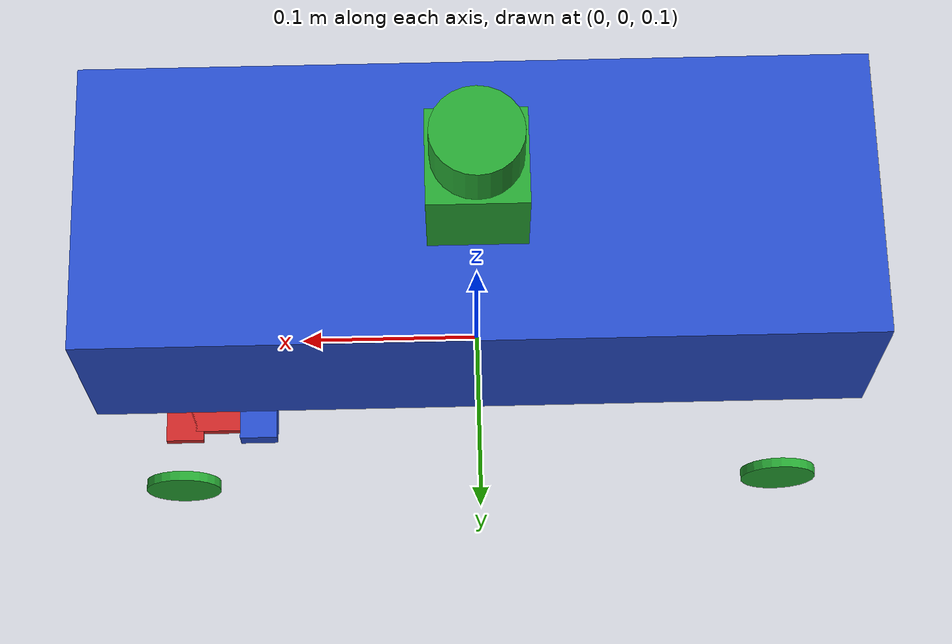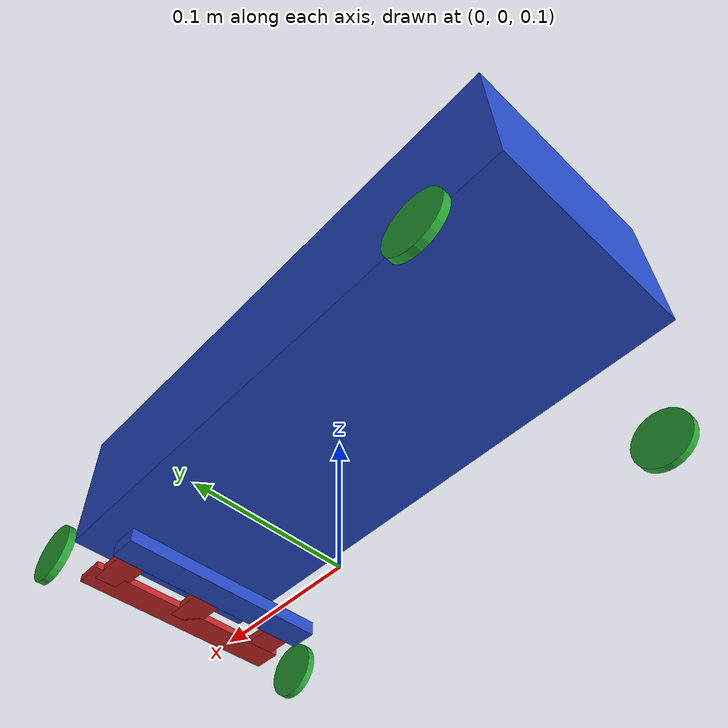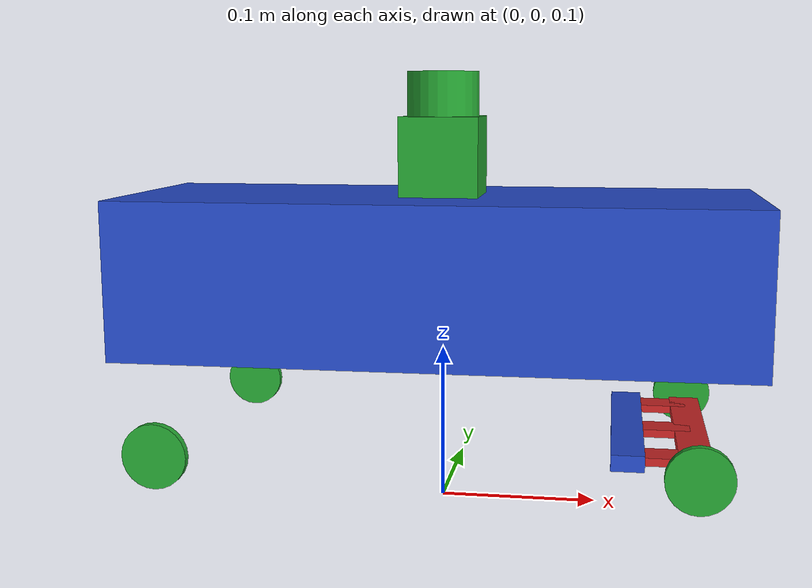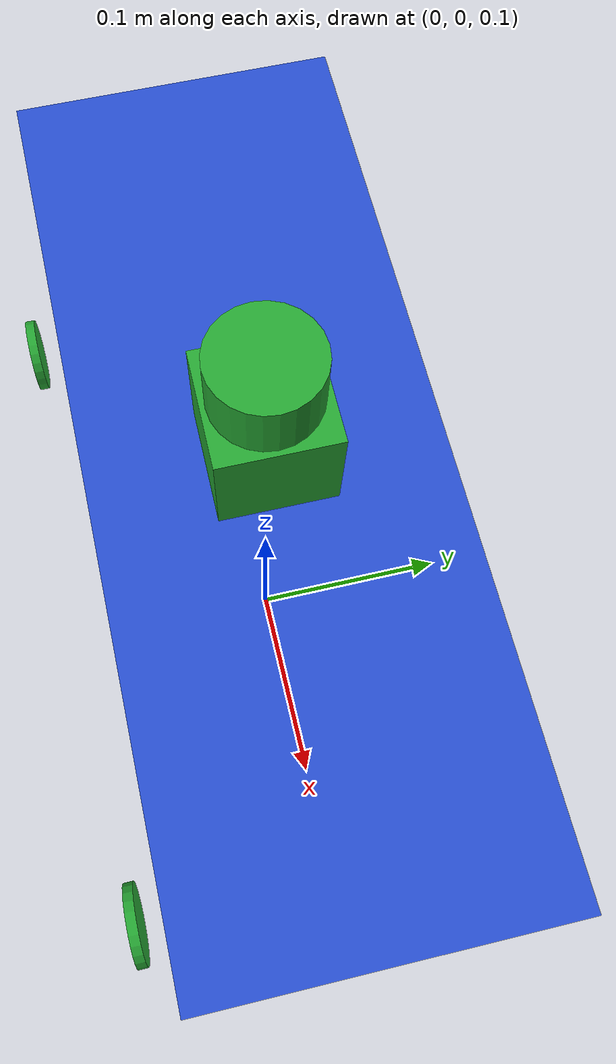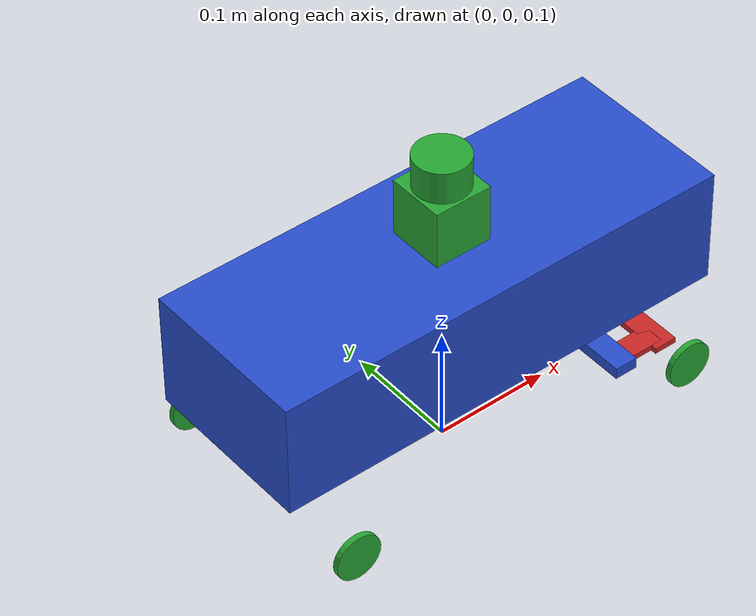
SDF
<sdf version='1.3'>
  <model name='ackermann'>
    <link name='base_link'>
      <pose>0.000000 0.000000 0.000000 0.000000 0.000000 0.000000</pose>
      <inertial>
        <pose>0.002623 0.000000 0.022951 0.000000 0.000000 0.000000</pose>
        <mass>0.610000</mass>
        <inertia>
          <ixx>0.611350</ixx>
          <ixy>0.000000</ixy>
          <ixz>0.000160</ixz>
          <iyy>0.611606</iyy>
          <iyz>0.000000</iyz>
          <izz>0.610256</izz>
        </inertia>
      </inertial>
      <collision name='base_link_geom'>
        <pose>0.000000 0.000000 0.000000 0.000000 0.000000 0.000000</pose>
        <geometry>
          <box>
            <size>0.400000 0.150000 0.100000</size>
          </box>
        </geometry>
        <surface>
          <contact>
            <ode/>
          </contact>
          <friction>
            <ode/>
          </friction>
        </surface>
      </collision>
      <collision name='base_link_geom_base_scan_link'>
        <pose>0.000000 0.000000 0.114000 0.000000 0.000000 0.000000</pose>
        <geometry>
          <cylinder>
            <length>0.028000</length>
            <radius>0.022900</radius>
          </cylinder>
        </geometry>
        <surface>
          <contact>
            <ode/>
          </contact>
          <friction>
            <ode/>
          </friction>
        </surface>
        <surface>
          <contact>
            <ode/>
          </contact>
          <friction>
            <ode/>
          </friction>
        </surface>
      </collision>
      <collision name='base_link_geom_front_link'>
        <pose>0.160000 0.000000 -0.100000 0.000000 0.000000 0.000000</pose>
        <geometry>
          <box>
            <size>0.020000 0.150000 0.005000</size>
          </box>
        </geometry>
        <surface>
          <contact>
            <ode/>
          </contact>
          <friction>
            <ode/>
          </friction>
        </surface>
        <surface>
          <contact>
            <ode/>
          </contact>
          <friction>
            <ode/>
          </friction>
        </surface>
      </collision>
      <collision name='base_link_geom_laser_base_link'>
        <pose>0.000000 0.000000 0.075000 0.000000 0.000000 0.000000</pose>
        <geometry>
          <box>
            <size>0.050000 0.050000 0.050000</size>
          </box>
        </geometry>
        <surface>
          <contact>
            <ode/>
          </contact>
          <friction>
            <ode/>
          </friction>
        </surface>
      </collision>
      <visual name='base_link_visual'>
        <pose>0.000000 0.000000 0.000000 0.000000 0.000000 0.000000</pose>
        <geometry>
          <box>
            <size>0.400000 0.150000 0.100000</size>
          </box>
        </geometry>
        <material>
          <script>
            <name>Gazebo/Blue</name>
          </script>
        </material>
      </visual>
      <visual name='base_link_visualbase_scan_link'>
        <pose>0.000000 0.000000 0.114000 0.000000 0.000000 0.000000</pose>
        <geometry>
          <cylinder>
            <length>0.028000</length>
            <radius>0.022900</radius>
          </cylinder>
        </geometry>
        <material>
          <script>
            <name>Gazebo/Green</name>
          </script>
        </material>
      </visual>
      <visual name='base_link_visualfront_link'>
        <pose>0.160000 0.000000 -0.100000 0.000000 0.000000 0.000000</pose>
        <geometry>
          <box>
            <size>0.020000 0.150000 0.005000</size>
          </box>
        </geometry>
        <material>
          <script>
            <name>Gazebo/Red</name>
          </script>
        </material>
        <material>
          <script>
            <name>Gazebo/Red</name>
          </script>
        </material>
      </visual>
      <visual name='base_link_visuallaser_base_link'>
        <pose>0.000000 0.000000 0.075000 0.000000 0.000000 0.000000</pose>
        <geometry>
          <box>
            <size>0.050000 0.050000 0.050000</size>
          </box>
        </geometry>
        <material>
          <script>
            <name>Gazebo/Green</name>
          </script>
        </material>
      </visual>
      <velocity_decay>
        <linear>0.000000</linear>
        <angular>0.000000</angular>
      </velocity_decay>
      <velocity_decay>
        <linear>0.000000</linear>
        <angular>0.000000</angular>
      </velocity_decay>
      <velocity_decay>
        <linear>0.000000</linear>
        <angular>0.000000</angular>
      </velocity_decay>
      <velocity_decay>
        <linear>0.000000</linear>
        <angular>0.000000</angular>
      </velocity_decay>
      <velocity_decay>
        <linear>0.000000</linear>
        <angular>0.000000</angular>
      </velocity_decay>
      <sensor name='laser' type='ray'>
        <update_rate>10.000000</update_rate>
        <ray>
          <scan>
            <horizontal>
              <samples>683</samples>
              <resolution>1.000000</resolution>
              <min_angle>-2.356194</min_angle>
              <max_angle>2.356194</max_angle>
            </horizontal>
            <vertical>
              <samples>1</samples>
              <min_angle>0.000000</min_angle>
              <max_angle>0.000000</max_angle>
            </vertical>
          </scan>
          <range>
            <min>0.060000</min>
            <max>4.000000</max>
            <resolution>0.001000</resolution>
          </range>
        </ray>

        <pose>0.000000 0.000000 0.100000 0.000000 0.000000 0.000000</pose>
      </sensor>
      <gravity>1</gravity>
      <velocity_decay>
        <linear>0.000000</linear>
        <angular>0.000000</angular>
      </velocity_decay>
      <self_collide>0</self_collide>
    </link>
    <link name='back_left_wheel_link'>
      <pose>-0.160000 0.100000 -0.100000 0.000000 0.000000 0.000000</pose>
      <inertial>
        <pose>0.000000 0.000000 0.000000 0.000000 0.000000 0.000000</pose>
        <mass>0.010000</mass>
        <inertia>
          <ixx>0.010000</ixx>
          <ixy>0.000000</ixy>
          <ixz>0.000000</ixz>
          <iyy>0.010000</iyy>
          <iyz>0.000000</iyz>
          <izz>0.010000</izz>
        </inertia>
      </inertial>
      <collision name='back_left_wheel_link_geom'>
        <pose>0.000000 0.000000 0.000000 1.570800 0.000000 0.000000</pose>
        <geometry>
          <cylinder>
            <length>0.005000</length>
            <radius>0.020000</radius>
          </cylinder>
        </geometry>
        <surface>
          <contact>
            <ode/>
          </contact>
          <friction>
            <ode/>
          </friction>
        </surface>
      </collision>
      <visual name='back_left_wheel_link_visual'>
        <pose>0.000000 0.000000 0.000000 1.570800 0.000000 0.000000</pose>
        <geometry>
          <cylinder>
            <length>0.005000</length>
            <radius>0.020000</radius>
          </cylinder>
        </geometry>
        <material>
          <script>
            <name>Gazebo/Green</name>
          </script>
        </material>
      </visual>
      <gravity>1</gravity>
      <velocity_decay>
        <linear>0.000000</linear>
        <angular>0.000000</angular>
      </velocity_decay>
      <self_collide>0</self_collide>
    </link>
    <joint name='back_left_wheel_joint' type='revolute'>
      <child>back_left_wheel_link</child>
      <parent>base_link</parent>
      <axis>
        <xyz>0.000000 1.000000 0.000000</xyz>
        <limit>
          <lower>-10000000000000000.000000</lower>
          <upper>10000000000000000.000000</upper>
        </limit>
        <dynamics/>
      </axis>
    </joint>
    <link name='back_right_wheel_link'>
      <pose>-0.160000 -0.100000 -0.100000 0.000000 0.000000 0.000000</pose>
      <inertial>
        <pose>0.000000 0.000000 0.000000 0.000000 0.000000 0.000000</pose>
        <mass>0.010000</mass>
        <inertia>
          <ixx>0.010000</ixx>
          <ixy>0.000000</ixy>
          <ixz>0.000000</ixz>
          <iyy>0.010000</iyy>
          <iyz>0.000000</iyz>
          <izz>0.010000</izz>
        </inertia>
      </inertial>
      <collision name='back_right_wheel_link_geom'>
        <pose>0.000000 0.000000 0.000000 1.570800 0.000000 0.000000</pose>
        <geometry>
          <cylinder>
            <length>0.005000</length>
            <radius>0.020000</radius>
          </cylinder>
        </geometry>
        <surface>
          <contact>
            <ode/>
          </contact>
          <friction>
            <ode/>
          </friction>
        </surface>
      </collision>
      <visual name='back_right_wheel_link_visual'>
        <pose>0.000000 0.000000 0.000000 1.570800 0.000000 0.000000</pose>
        <geometry>
          <cylinder>
            <length>0.005000</length>
            <radius>0.020000</radius>
          </cylinder>
        </geometry>
        <material>
          <script>
            <name>Gazebo/Green</name>
          </script>
        </material>
      </visual>
      <gravity>1</gravity>
      <velocity_decay>
        <linear>0.000000</linear>
        <angular>0.000000</angular>
      </velocity_decay>
      <self_collide>0</self_collide>
    </link>
    <joint name='back_right_wheel_joint' type='revolute'>
      <child>back_right_wheel_link</child>
      <parent>base_link</parent>
      <axis>
        <xyz>0.000000 1.000000 0.000000</xyz>
        <limit>
          <lower>-10000000000000000.000000</lower>
          <upper>10000000000000000.000000</upper>
        </limit>
        <dynamics/>
      </axis>
    </joint>
    <link name='front_left_bar_link'>
      <pose>0.160000 0.060000 -0.100000 0.000000 0.000000 0.000000</pose>
      <inertial>
        <pose>0.000000 0.000000 0.000000 0.000000 0.000000 0.000000</pose>
        <mass>0.010000</mass>
        <inertia>
          <ixx>0.010000</ixx>
          <ixy>0.000000</ixy>
          <ixz>0.000000</ixz>
          <iyy>0.010000</iyy>
          <iyz>0.000000</iyz>
          <izz>0.010000</izz>
        </inertia>
      </inertial>
      <collision name='front_left_bar_link_geom'>
        <pose>-0.020000 0.000000 0.000000 0.000000 0.000000 0.000000</pose>
        <geometry>
          <box>
            <size>0.040000 0.020000 0.005000</size>
          </box>
        </geometry>
        <surface>
          <contact>
            <ode/>
          </contact>
          <friction>
            <ode/>
          </friction>
        </surface>
      </collision>
      <visual name='front_left_bar_link_visual'>
        <pose>-0.020000 0.000000 0.000000 0.000000 0.000000 0.000000</pose>
        <geometry>
          <box>
            <size>0.040000 0.020000 0.005000</size>
          </box>
        </geometry>
        <material>
          <script>
            <name>Gazebo/Red</name>
          </script>
        </material>
      </visual>
      <gravity>1</gravity>
      <velocity_decay>
        <linear>0.000000</linear>
        <angular>0.000000</angular>
      </velocity_decay>
      <self_collide>0</self_collide>
    </link>
    <joint name='front_left_bar_joint' type='revolute'>
      <child>front_left_bar_link</child>
      <parent>base_link</parent>
      <axis>
        <xyz>0.000000 0.000000 1.000000</xyz>
        <limit>
          <lower>-0.500000</lower>
          <upper>0.500000</upper>
        </limit>
        <dynamics/>
      </axis>
    </joint>
    <link name='front_left_wheel_link'>
      <pose>0.160000 0.100000 -0.100000 0.000000 0.000000 0.000000</pose>
      <inertial>
        <pose>0.000000 0.000000 0.000000 0.000000 0.000000 0.000000</pose>
        <mass>0.010000</mass>
        <inertia>
          <ixx>0.010000</ixx>
          <ixy>0.000000</ixy>
          <ixz>0.000000</ixz>
          <iyy>0.010000</iyy>
          <iyz>0.000000</iyz>
          <izz>0.010000</izz>
        </inertia>
      </inertial>
      <collision name='front_left_wheel_link_geom'>
        <pose>0.000000 0.000000 0.000000 1.570800 0.000000 0.000000</pose>
        <geometry>
          <cylinder>
            <length>0.005000</length>
            <radius>0.020000</radius>
          </cylinder>
        </geometry>
        <surface>
          <contact>
            <ode/>
          </contact>
          <friction>
            <ode/>
          </friction>
        </surface>
      </collision>
      <visual name='front_left_wheel_link_visual'>
        <pose>0.000000 0.000000 0.000000 1.570800 0.000000 0.000000</pose>
        <geometry>
          <cylinder>
            <length>0.005000</length>
            <radius>0.020000</radius>
          </cylinder>
        </geometry>
        <material>
          <script>
            <name>Gazebo/Green</name>
          </script>
        </material>
      </visual>
      <gravity>1</gravity>
      <velocity_decay>
        <linear>0.000000</linear>
        <angular>0.000000</angular>
      </velocity_decay>
      <self_collide>0</self_collide>
    </link>
    <joint name='front_left_wheel_joint' type='revolute'>
      <child>front_left_wheel_link</child>
      <parent>front_left_bar_link</parent>
      <axis>
        <xyz>0.000000 1.000000 0.000000</xyz>
        <limit>
          <lower>-10000000000000000.000000</lower>
          <upper>10000000000000000.000000</upper>
        </limit>
        <dynamics/>
      </axis>
    </joint>
    <link name='front_right_bar_link'>
      <pose>0.160000 -0.060000 -0.100000 0.000000 0.000000 0.000000</pose>
      <inertial>
        <pose>0.000000 0.000000 0.000000 0.000000 0.000000 0.000000</pose>
        <mass>0.010000</mass>
        <inertia>
          <ixx>0.010000</ixx>
          <ixy>0.000000</ixy>
          <ixz>0.000000</ixz>
          <iyy>0.010000</iyy>
          <iyz>0.000000</iyz>
          <izz>0.010000</izz>
        </inertia>
      </inertial>
      <collision name='front_right_bar_link_geom'>
        <pose>-0.020000 0.000000 0.000000 0.000000 0.000000 0.000000</pose>
        <geometry>
          <box>
            <size>0.040000 0.020000 0.005000</size>
          </box>
        </geometry>
        <surface>
          <contact>
            <ode/>
          </contact>
          <friction>
            <ode/>
          </friction>
        </surface>
      </collision>
      <visual name='front_right_bar_link_visual'>
        <pose>-0.020000 0.000000 0.000000 0.000000 0.000000 0.000000</pose>
        <geometry>
          <box>
            <size>0.040000 0.020000 0.005000</size>
          </box>
        </geometry>
        <material>
          <script>
            <name>Gazebo/Red</name>
          </script>
        </material>
      </visual>
      <gravity>1</gravity>
      <velocity_decay>
        <linear>0.000000</linear>
        <angular>0.000000</angular>
      </velocity_decay>
      <self_collide>0</self_collide>
    </link>
    <joint name='front_right_bar_joint' type='revolute'>
      <child>front_right_bar_link</child>
      <parent>base_link</parent>
      <axis>
        <xyz>0.000000 0.000000 1.000000</xyz>
        <limit>
          <lower>-0.500000</lower>
          <upper>0.500000</upper>
        </limit>
        <dynamics/>
      </axis>
    </joint>
    <link name='front_right_wheel_link'>
      <pose>0.160000 -0.100000 -0.100000 0.000000 0.000000 0.000000</pose>
      <inertial>
        <pose>0.000000 0.000000 0.000000 0.000000 0.000000 0.000000</pose>
        <mass>0.010000</mass>
        <inertia>
          <ixx>0.010000</ixx>
          <ixy>0.000000</ixy>
          <ixz>0.000000</ixz>
          <iyy>0.010000</iyy>
          <iyz>0.000000</iyz>
          <izz>0.010000</izz>
        </inertia>
      </inertial>
      <collision name='front_right_wheel_link_geom'>
        <pose>0.000000 0.000000 0.000000 1.570800 0.000000 0.000000</pose>
        <geometry>
          <cylinder>
            <length>0.005000</length>
            <radius>0.020000</radius>
          </cylinder>
        </geometry>
        <surface>
          <contact>
            <ode/>
          </contact>
          <friction>
            <ode/>
          </friction>
        </surface>
      </collision>
      <visual name='front_right_wheel_link_visual'>
        <pose>0.000000 0.000000 0.000000 1.570800 0.000000 0.000000</pose>
        <geometry>
          <cylinder>
            <length>0.005000</length>
            <radius>0.020000</radius>
          </cylinder>
        </geometry>
        <material>
          <script>
            <name>Gazebo/Green</name>
          </script>
        </material>
      </visual>
      <gravity>1</gravity>
      <velocity_decay>
        <linear>0.000000</linear>
        <angular>0.000000</angular>
      </velocity_decay>
      <self_collide>0</self_collide>
    </link>
    <joint name='front_right_wheel_joint' type='revolute'>
      <child>front_right_wheel_link</child>
      <parent>front_right_bar_link</parent>
      <axis>
        <xyz>0.000000 1.000000 0.000000</xyz>
        <limit>
          <lower>-10000000000000000.000000</lower>
          <upper>10000000000000000.000000</upper>
        </limit>
        <dynamics/>
      </axis>
    </joint>
    <link name='steer_link'>
      <pose>0.160000 0.000000 -0.100000 0.000000 0.000000 0.000000</pose>
      <inertial>
        <pose>0.000000 0.000000 0.000000 0.000000 0.000000 0.000000</pose>
        <mass>0.010000</mass>
        <inertia>
          <ixx>0.010000</ixx>
          <ixy>0.000000</ixy>
          <ixz>0.000000</ixz>
          <iyy>0.010000</iyy>
          <iyz>0.000000</iyz>
          <izz>0.010000</izz>
        </inertia>
      </inertial>
      <collision name='steer_link_geom'>
        <pose>0.020000 0.000000 0.000000 0.000000 0.000000 0.000000</pose>
        <geometry>
          <box>
            <size>0.040000 0.020000 0.005000</size>
          </box>
        </geometry>
        <surface>
          <contact>
            <ode/>
          </contact>
          <friction>
            <ode/>
          </friction>
        </surface>
      </collision>
      <visual name='steer_link_visual'>
        <pose>-0.020000 0.000000 0.000000 0.000000 0.000000 0.000000</pose>
        <geometry>
          <box>
            <size>0.040000 0.020000 0.005000</size>
          </box>
        </geometry>
        <material>
          <script>
            <name>Gazebo/Red</name>
          </script>
        </material>
      </visual>
      <gravity>1</gravity>
      <velocity_decay>
        <linear>0.000000</linear>
        <angular>0.000000</angular>
      </velocity_decay>
      <self_collide>0</self_collide>
    </link>
    <joint name='steer_joint' type='revolute'>
      <child>steer_link</child>
      <parent>base_link</parent>
      <axis>
        <xyz>0.000000 0.000000 1.000000</xyz>
        <limit>
          <lower>-0.500000</lower>
          <upper>0.500000</upper>
        </limit>
        <dynamics/>
      </axis>
    </joint>
    <link name='ackermann_bar_link'>
      <pose>0.120000 0.000000 -0.100000 0.000000 0.000000 0.000000</pose>
      <inertial>
        <pose>0.000000 0.000000 0.000000 0.000000 0.000000 0.000000</pose>
        <mass>0.010000</mass>
        <inertia>
          <ixx>0.010000</ixx>
          <ixy>0.000000</ixy>
          <ixz>0.000000</ixz>
          <iyy>0.010000</iyy>
          <iyz>0.000000</iyz>
          <izz>0.010000</izz>
        </inertia>
      </inertial>
      <collision name='ackermann_bar_link_geom'>
        <pose>0.000000 0.000000 0.000000 0.000000 0.000000 0.000000</pose>
        <geometry>
          <box>
            <size>0.020000 0.150000 0.010000</size>
          </box>
        </geometry>
        <surface>
          <contact>
            <ode/>
          </contact>
          <friction>
            <ode/>
          </friction>
        </surface>
      </collision>
      <visual name='ackermann_bar_link_visual'>
        <pose>0.000000 0.000000 0.000000 0.000000 0.000000 0.000000</pose>
        <geometry>
          <box>
            <size>0.020000 0.150000 0.010000</size>
          </box>
        </geometry>
        <material>
          <script>
            <name>Gazebo/Blue</name>
          </script>
        </material>
      </visual>
      <gravity>1</gravity>
      <velocity_decay>
        <linear>0.000000</linear>
        <angular>0.000000</angular>
      </velocity_decay>
      <self_collide>0</self_collide>
    </link>
    <joint name='ackermann_joint' type='revolute'>
      <child>ackermann_bar_link</child>
      <parent>steer_link</parent>
      <axis>
        <xyz>0.000000 0.000000 1.000000</xyz>
        <limit>
          <lower>-0.500000</lower>
          <upper>0.500000</upper>
        </limit>
        <dynamics/>
      </axis>
    </joint>
    <joint name='ackermann_left_bar_joint' type='revolute'>
      <parent>front_left_bar_link</parent>
      <child>ackermann_bar_link</child>
      <axis>
        <xyz>0.000000 0.000000 1.000000</xyz>
        <limit>
          <lower>-10000000000000000.000000</lower>
          <upper>10000000000000000.000000</upper>
        </limit>
        <dynamics/>
      </axis>
      <pose>0.000000 0.060000 0.000000 0.000000 0.000000 0.000000</pose>
    </joint>
    <joint name='ackermann_right_bar_joint' type='revolute'>
      <parent>front_right_bar_link</parent>
      <child>ackermann_bar_link</child>
      <axis>
        <xyz>0.000000 0.000000 1.000000</xyz>
        <limit>
          <lower>-10000000000000000.000000</lower>
          <upper>10000000000000000.000000</upper>
        </limit>
        <dynamics/>
      </axis>
      <pose>0.000000 -0.060000 0.000000 0.000000 0.000000 0.000000</pose>
    </joint>
    <static>0</static>
    <plugin name='ackermann_controller' filename='libackermann_plugin.so'>
      <alwaysOn>1</alwaysOn>
      <update>100</update>
      <updateRate>100.0</updateRate>
      <leftJoint>back_left_wheel_joint</leftJoint>
      <rightJoint>back_right_wheel_joint</rightJoint>
      <steerJoint>steer_joint</steerJoint>
      <wheelSeparationWidth>0.16</wheelSeparationWidth>
      <wheelSeparationLength>0.45</wheelSeparationLength>
      <wheelDiameter>0.041</wheelDiameter>
      <driveTorque>5</driveTorque>
      <steerTorque>5</steerTorque>
      <robotNamespace>/</robotNamespace>
      <topicName>pilot/drive</topicName>
      <bodyName>base_link</bodyName>
    </plugin>
    <pose>0.000000 0.000000 0.25 0.000000 0.000000 0.000000</pose>
  </model>
</sdf>
